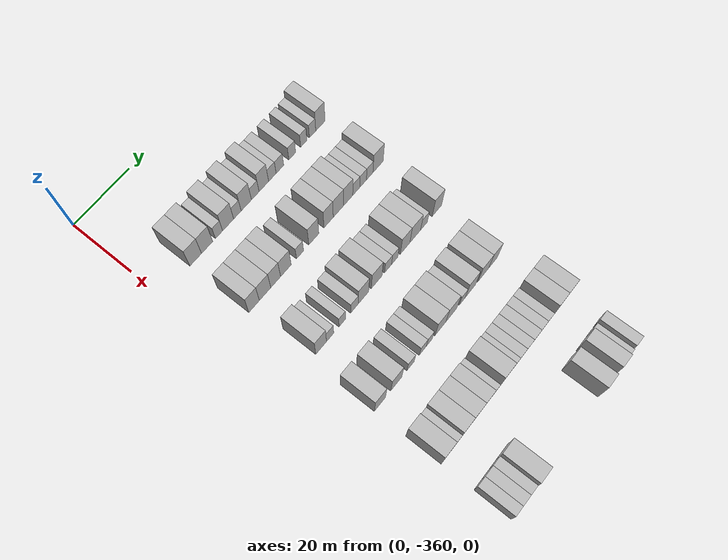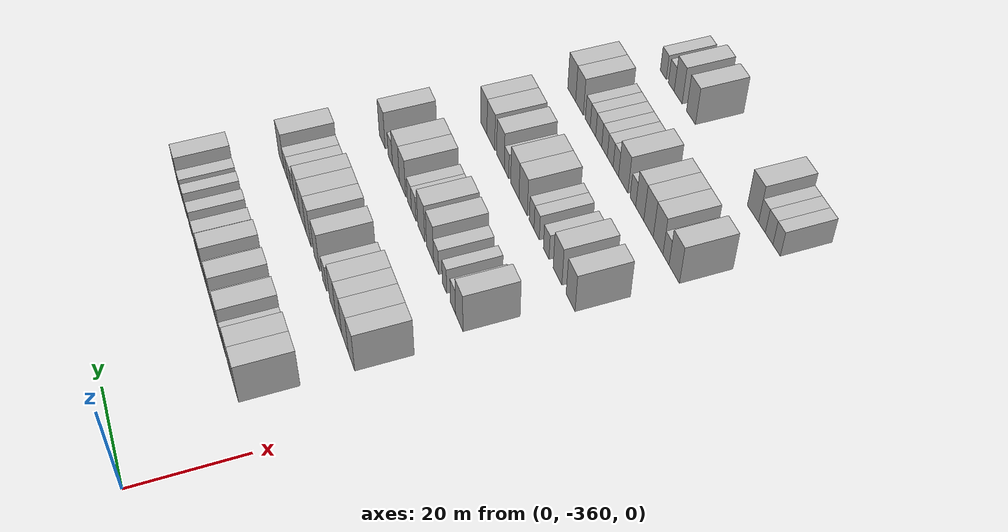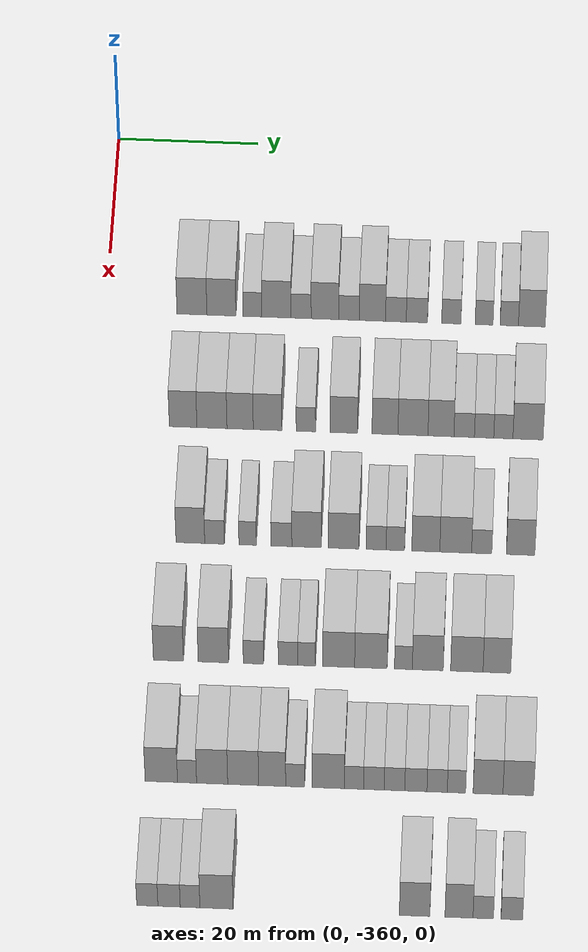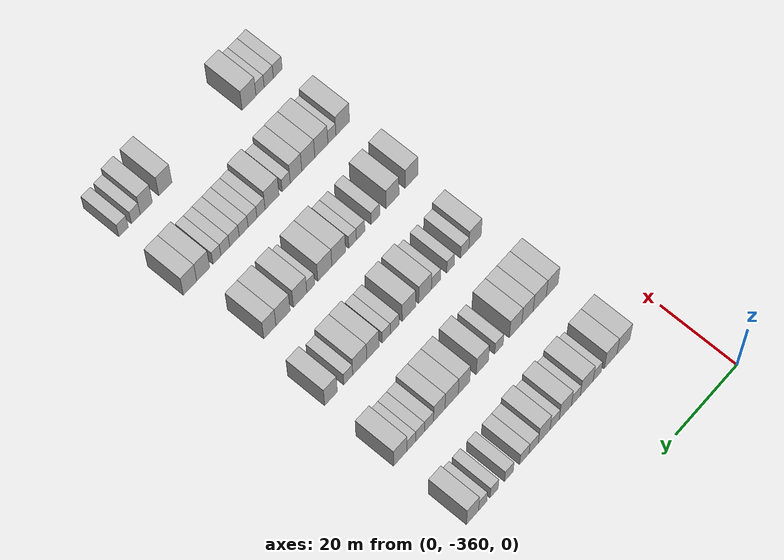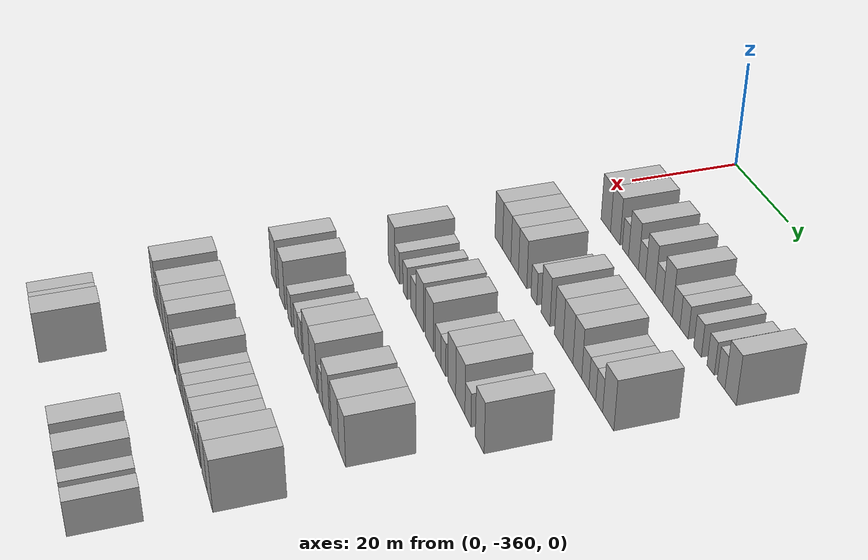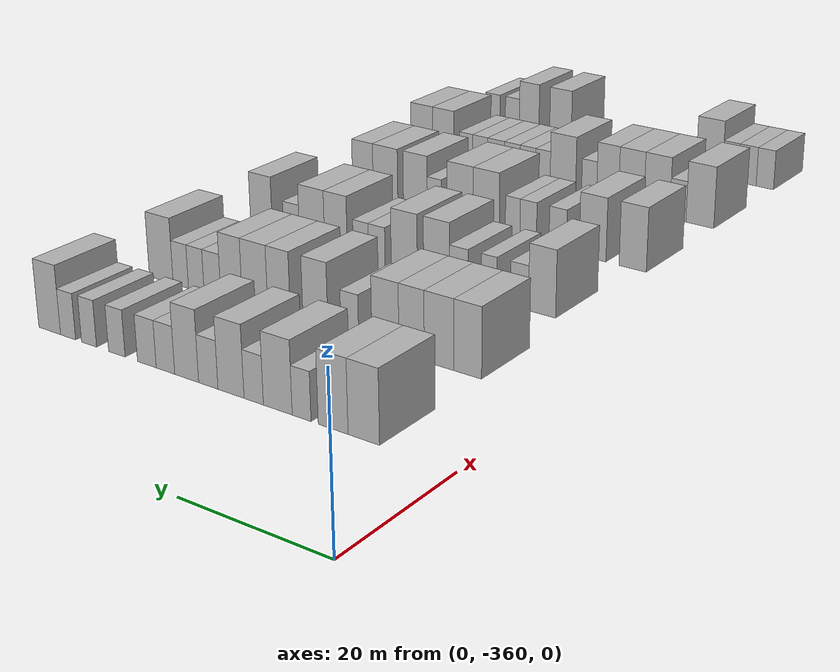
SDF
<sdf version="1.6">
 <world name="default">
  <model name="building_1">
   <static>1</static>
   <pose>25.0000 -347.8892 0 0.000000 0.000000 0.000000</pose>
   <link name="link">
    <pose>0 0 4.50 0 0 0</pose>
    <collision name="collision"><geometry><box><size>10.0000 4.2216 9.0000</size></box></geometry></collision>
    <visual name="visual">
     <cast_shadows>0</cast_shadows>
     <geometry><box><size>10.0000 4.2216 9.0000</size></box></geometry>
     <material>
      <script>
       <uri>model://HANNAS_wall/materials/scripts</uri>
       <uri>model://HANNAS_wall/materials/textures</uri>
       <name>vrc/HANNAS_wall</name>
      </script>
     </material>
    </visual>
   </link>
  </model>
  <model name="building_2">
   <static>1</static>
   <pose>25.0000 -343.7324 0 0.000000 0.000000 0.000000</pose>
   <link name="link">
    <pose>0 0 4.50 0 0 0</pose>
    <collision name="collision"><geometry><box><size>10.0000 4.0920 9.0000</size></box></geometry></collision>
    <visual name="visual">
     <cast_shadows>0</cast_shadows>
     <geometry><box><size>10.0000 4.0920 9.0000</size></box></geometry>
     <material>
      <script>
       <uri>model://HANNAS_wall/materials/scripts</uri>
       <uri>model://HANNAS_wall/materials/textures</uri>
       <name>vrc/HANNAS_wall</name>
      </script>
     </material>
    </visual>
   </link>
  </model>
  <model name="building_3">
   <static>1</static>
   <pose>25.0000 -339.3611 0 0.000000 0.000000 0.000000</pose>
   <link name="link">
    <pose>0 0 3.00 0 0 0</pose>
    <collision name="collision"><geometry><box><size>10.0000 2.6506 6.0000</size></box></geometry></collision>
    <visual name="visual">
     <cast_shadows>0</cast_shadows>
     <geometry><box><size>10.0000 2.6506 6.0000</size></box></geometry>
     <material>
      <script>
       <uri>model://HANNAS_wall/materials/scripts</uri>
       <uri>model://HANNAS_wall/materials/textures</uri>
       <name>vrc/HANNAS_wall</name>
      </script>
     </material>
    </visual>
   </link>
  </model>
  <model name="building_4">
   <static>1</static>
   <pose>25.0000 -335.9743 0 0.000000 0.000000 0.000000</pose>
   <link name="link">
    <pose>0 0 4.50 0 0 0</pose>
    <collision name="collision"><geometry><box><size>10.0000 4.1231 9.0000</size></box></geometry></collision>
    <visual name="visual">
     <cast_shadows>0</cast_shadows>
     <geometry><box><size>10.0000 4.1231 9.0000</size></box></geometry>
     <material>
      <script>
       <uri>model://HANNAS_wall/materials/scripts</uri>
       <uri>model://HANNAS_wall/materials/textures</uri>
       <name>vrc/HANNAS_wall</name>
      </script>
     </material>
    </visual>
   </link>
  </model>
  <model name="building_5">
   <static>1</static>
   <pose>25.0000 -332.4978 0 0.000000 0.000000 0.000000</pose>
   <link name="link">
    <pose>0 0 3.00 0 0 0</pose>
    <collision name="collision"><geometry><box><size>10.0000 2.8299 6.0000</size></box></geometry></collision>
    <visual name="visual">
     <cast_shadows>0</cast_shadows>
     <geometry><box><size>10.0000 2.8299 6.0000</size></box></geometry>
     <material>
      <script>
       <uri>model://HANNAS_wall/materials/scripts</uri>
       <uri>model://HANNAS_wall/materials/textures</uri>
       <name>vrc/HANNAS_wall</name>
      </script>
     </material>
    </visual>
   </link>
  </model>
  <model name="building_6">
   <static>1</static>
   <pose>25.0000 -329.1431 0 0.000000 0.000000 0.000000</pose>
   <link name="link">
    <pose>0 0 4.50 0 0 0</pose>
    <collision name="collision"><geometry><box><size>10.0000 3.8795 9.0000</size></box></geometry></collision>
    <visual name="visual">
     <cast_shadows>0</cast_shadows>
     <geometry><box><size>10.0000 3.8795 9.0000</size></box></geometry>
     <material>
      <script>
       <uri>model://HANNAS_wall/materials/scripts</uri>
       <uri>model://HANNAS_wall/materials/textures</uri>
       <name>vrc/HANNAS_wall</name>
      </script>
     </material>
    </visual>
   </link>
  </model>
  <model name="building_7">
   <static>1</static>
   <pose>25.0000 -325.7389 0 0.000000 0.000000 0.000000</pose>
   <link name="link">
    <pose>0 0 3.00 0 0 0</pose>
    <collision name="collision"><geometry><box><size>10.0000 2.9289 6.0000</size></box></geometry></collision>
    <visual name="visual">
     <cast_shadows>0</cast_shadows>
     <geometry><box><size>10.0000 2.9289 6.0000</size></box></geometry>
     <material>
      <script>
       <uri>model://HANNAS_wall/materials/scripts</uri>
       <uri>model://HANNAS_wall/materials/textures</uri>
       <name>vrc/HANNAS_wall</name>
      </script>
     </material>
    </visual>
   </link>
  </model>
  <model name="building_8">
   <static>1</static>
   <pose>25.0000 -322.4290 0 0.000000 0.000000 0.000000</pose>
   <link name="link">
    <pose>0 0 4.50 0 0 0</pose>
    <collision name="collision"><geometry><box><size>10.0000 3.6909 9.0000</size></box></geometry></collision>
    <visual name="visual">
     <cast_shadows>0</cast_shadows>
     <geometry><box><size>10.0000 3.6909 9.0000</size></box></geometry>
     <material>
      <script>
       <uri>model://HANNAS_wall/materials/scripts</uri>
       <uri>model://HANNAS_wall/materials/textures</uri>
       <name>vrc/HANNAS_wall</name>
      </script>
     </material>
    </visual>
   </link>
  </model>
  <model name="building_9">
   <static>1</static>
   <pose>25.0000 -319.1294 0 0.000000 0.000000 0.000000</pose>
   <link name="link">
    <pose>0 0 3.00 0 0 0</pose>
    <collision name="collision"><geometry><box><size>10.0000 2.9083 6.0000</size></box></geometry></collision>
    <visual name="visual">
     <cast_shadows>0</cast_shadows>
     <geometry><box><size>10.0000 2.9083 6.0000</size></box></geometry>
     <material>
      <script>
       <uri>model://HANNAS_wall/materials/scripts</uri>
       <uri>model://HANNAS_wall/materials/textures</uri>
       <name>vrc/HANNAS_wall</name>
      </script>
     </material>
    </visual>
   </link>
  </model>
  <model name="building_10">
   <static>1</static>
   <pose>25.0000 -316.1820 0 0.000000 0.000000 0.000000</pose>
   <link name="link">
    <pose>0 0 3.00 0 0 0</pose>
    <collision name="collision"><geometry><box><size>10.0000 2.9864 6.0000</size></box></geometry></collision>
    <visual name="visual">
     <cast_shadows>0</cast_shadows>
     <geometry><box><size>10.0000 2.9864 6.0000</size></box></geometry>
     <material>
      <script>
       <uri>model://HANNAS_wall/materials/scripts</uri>
       <uri>model://HANNAS_wall/materials/textures</uri>
       <name>vrc/HANNAS_wall</name>
      </script>
     </material>
    </visual>
   </link>
  </model>
  <model name="building_11">
   <static>1</static>
   <pose>25.0000 -311.3338 0 0.000000 0.000000 0.000000</pose>
   <link name="link">
    <pose>0 0 3.00 0 0 0</pose>
    <collision name="collision"><geometry><box><size>10.0000 2.7099 6.0000</size></box></geometry></collision>
    <visual name="visual">
     <cast_shadows>0</cast_shadows>
     <geometry><box><size>10.0000 2.7099 6.0000</size></box></geometry>
     <material>
      <script>
       <uri>model://HANNAS_wall/materials/scripts</uri>
       <uri>model://HANNAS_wall/materials/textures</uri>
       <name>vrc/HANNAS_wall</name>
      </script>
     </material>
    </visual>
   </link>
  </model>
  <model name="building_12">
   <static>1</static>
   <pose>25.0000 -306.7217 0 0.000000 0.000000 0.000000</pose>
   <link name="link">
    <pose>0 0 3.00 0 0 0</pose>
    <collision name="collision"><geometry><box><size>10.0000 2.5142 6.0000</size></box></geometry></collision>
    <visual name="visual">
     <cast_shadows>0</cast_shadows>
     <geometry><box><size>10.0000 2.5142 6.0000</size></box></geometry>
     <material>
      <script>
       <uri>model://HANNAS_wall/materials/scripts</uri>
       <uri>model://HANNAS_wall/materials/textures</uri>
       <name>vrc/HANNAS_wall</name>
      </script>
     </material>
    </visual>
   </link>
  </model>
  <model name="building_13">
   <static>1</static>
   <pose>25.0000 -303.1790 0 0.000000 0.000000 0.000000</pose>
   <link name="link">
    <pose>0 0 3.00 0 0 0</pose>
    <collision name="collision"><geometry><box><size>10.0000 2.5713 6.0000</size></box></geometry></collision>
    <visual name="visual">
     <cast_shadows>0</cast_shadows>
     <geometry><box><size>10.0000 2.5713 6.0000</size></box></geometry>
     <material>
      <script>
       <uri>model://HANNAS_wall/materials/scripts</uri>
       <uri>model://HANNAS_wall/materials/textures</uri>
       <name>vrc/HANNAS_wall</name>
      </script>
     </material>
    </visual>
   </link>
  </model>
  <model name="building_14">
   <static>1</static>
   <pose>25.0000 -300.0130 0 0.000000 0.000000 0.000000</pose>
   <link name="link">
    <pose>0 0 4.50 0 0 0</pose>
    <collision name="collision"><geometry><box><size>10.0000 3.7607 9.0000</size></box></geometry></collision>
    <visual name="visual">
     <cast_shadows>0</cast_shadows>
     <geometry><box><size>10.0000 3.7607 9.0000</size></box></geometry>
     <material>
      <script>
       <uri>model://HANNAS_wall/materials/scripts</uri>
       <uri>model://HANNAS_wall/materials/textures</uri>
       <name>vrc/HANNAS_wall</name>
      </script>
     </material>
    </visual>
   </link>
  </model>
  <model name="building_188">
   <static>1</static>
   <pose>44.0000 -348.0792 0 0.000000 0.000000 0.000000</pose>
   <link name="link">
    <pose>0 0 4.50 0 0 0</pose>
    <collision name="collision"><geometry><box><size>10.0000 3.8415 9.0000</size></box></geometry></collision>
    <visual name="visual">
     <cast_shadows>0</cast_shadows>
     <geometry><box><size>10.0000 3.8415 9.0000</size></box></geometry>
     <material>
      <script>
       <uri>model://HANNAS_wall/materials/scripts</uri>
       <uri>model://HANNAS_wall/materials/textures</uri>
       <name>vrc/HANNAS_wall</name>
      </script>
     </material>
    </visual>
   </link>
  </model>
  <model name="building_189">
   <static>1</static>
   <pose>44.0000 -344.0613 0 0.000000 0.000000 0.000000</pose>
   <link name="link">
    <pose>0 0 4.50 0 0 0</pose>
    <collision name="collision"><geometry><box><size>10.0000 4.1945 9.0000</size></box></geometry></collision>
    <visual name="visual">
     <cast_shadows>0</cast_shadows>
     <geometry><box><size>10.0000 4.1945 9.0000</size></box></geometry>
     <material>
      <script>
       <uri>model://HANNAS_wall/materials/scripts</uri>
       <uri>model://HANNAS_wall/materials/textures</uri>
       <name>vrc/HANNAS_wall</name>
      </script>
     </material>
    </visual>
   </link>
  </model>
  <model name="building_190">
   <static>1</static>
   <pose>44.0000 -340.1338 0 0.000000 0.000000 0.000000</pose>
   <link name="link">
    <pose>0 0 4.50 0 0 0</pose>
    <collision name="collision"><geometry><box><size>10.0000 3.6605 9.0000</size></box></geometry></collision>
    <visual name="visual">
     <cast_shadows>0</cast_shadows>
     <geometry><box><size>10.0000 3.6605 9.0000</size></box></geometry>
     <material>
      <script>
       <uri>model://HANNAS_wall/materials/scripts</uri>
       <uri>model://HANNAS_wall/materials/textures</uri>
       <name>vrc/HANNAS_wall</name>
      </script>
     </material>
    </visual>
   </link>
  </model>
  <model name="building_191">
   <static>1</static>
   <pose>44.0000 -336.3131 0 0.000000 0.000000 0.000000</pose>
   <link name="link">
    <pose>0 0 4.50 0 0 0</pose>
    <collision name="collision"><geometry><box><size>10.0000 3.9810 9.0000</size></box></geometry></collision>
    <visual name="visual">
     <cast_shadows>0</cast_shadows>
     <geometry><box><size>10.0000 3.9810 9.0000</size></box></geometry>
     <material>
      <script>
       <uri>model://HANNAS_wall/materials/scripts</uri>
       <uri>model://HANNAS_wall/materials/textures</uri>
       <name>vrc/HANNAS_wall</name>
      </script>
     </material>
    </visual>
   </link>
  </model>
  <model name="building_192">
   <static>1</static>
   <pose>44.0000 -330.9774 0 0.000000 0.000000 0.000000</pose>
   <link name="link">
    <pose>0 0 3.00 0 0 0</pose>
    <collision name="collision"><geometry><box><size>10.0000 2.6903 6.0000</size></box></geometry></collision>
    <visual name="visual">
     <cast_shadows>0</cast_shadows>
     <geometry><box><size>10.0000 2.6903 6.0000</size></box></geometry>
     <material>
      <script>
       <uri>model://HANNAS_wall/materials/scripts</uri>
       <uri>model://HANNAS_wall/materials/textures</uri>
       <name>vrc/HANNAS_wall</name>
      </script>
     </material>
    </visual>
   </link>
  </model>
  <model name="building_193">
   <static>1</static>
   <pose>44.0000 -325.6955 0 0.000000 0.000000 0.000000</pose>
   <link name="link">
    <pose>0 0 4.50 0 0 0</pose>
    <collision name="collision"><geometry><box><size>10.0000 3.8735 9.0000</size></box></geometry></collision>
    <visual name="visual">
     <cast_shadows>0</cast_shadows>
     <geometry><box><size>10.0000 3.8735 9.0000</size></box></geometry>
     <material>
      <script>
       <uri>model://HANNAS_wall/materials/scripts</uri>
       <uri>model://HANNAS_wall/materials/textures</uri>
       <name>vrc/HANNAS_wall</name>
      </script>
     </material>
    </visual>
   </link>
  </model>
  <model name="building_194">
   <static>1</static>
   <pose>44.0000 -319.9482 0 0.000000 0.000000 0.000000</pose>
   <link name="link">
    <pose>0 0 4.50 0 0 0</pose>
    <collision name="collision"><geometry><box><size>10.0000 3.6211 9.0000</size></box></geometry></collision>
    <visual name="visual">
     <cast_shadows>0</cast_shadows>
     <geometry><box><size>10.0000 3.6211 9.0000</size></box></geometry>
     <material>
      <script>
       <uri>model://HANNAS_wall/materials/scripts</uri>
       <uri>model://HANNAS_wall/materials/textures</uri>
       <name>vrc/HANNAS_wall</name>
      </script>
     </material>
    </visual>
   </link>
  </model>
  <model name="building_195">
   <static>1</static>
   <pose>44.0000 -316.0528 0 0.000000 0.000000 0.000000</pose>
   <link name="link">
    <pose>0 0 4.50 0 0 0</pose>
    <collision name="collision"><geometry><box><size>10.0000 4.1697 9.0000</size></box></geometry></collision>
    <visual name="visual">
     <cast_shadows>0</cast_shadows>
     <geometry><box><size>10.0000 4.1697 9.0000</size></box></geometry>
     <material>
      <script>
       <uri>model://HANNAS_wall/materials/scripts</uri>
       <uri>model://HANNAS_wall/materials/textures</uri>
       <name>vrc/HANNAS_wall</name>
      </script>
     </material>
    </visual>
   </link>
  </model>
  <model name="building_196">
   <static>1</static>
   <pose>44.0000 -312.1647 0 0.000000 0.000000 0.000000</pose>
   <link name="link">
    <pose>0 0 4.50 0 0 0</pose>
    <collision name="collision"><geometry><box><size>10.0000 3.6064 9.0000</size></box></geometry></collision>
    <visual name="visual">
     <cast_shadows>0</cast_shadows>
     <geometry><box><size>10.0000 3.6064 9.0000</size></box></geometry>
     <material>
      <script>
       <uri>model://HANNAS_wall/materials/scripts</uri>
       <uri>model://HANNAS_wall/materials/textures</uri>
       <name>vrc/HANNAS_wall</name>
      </script>
     </material>
    </visual>
   </link>
  </model>
  <model name="building_197">
   <static>1</static>
   <pose>44.0000 -308.9373 0 0.000000 0.000000 0.000000</pose>
   <link name="link">
    <pose>0 0 3.00 0 0 0</pose>
    <collision name="collision"><geometry><box><size>10.0000 2.8484 6.0000</size></box></geometry></collision>
    <visual name="visual">
     <cast_shadows>0</cast_shadows>
     <geometry><box><size>10.0000 2.8484 6.0000</size></box></geometry>
     <material>
      <script>
       <uri>model://HANNAS_wall/materials/scripts</uri>
       <uri>model://HANNAS_wall/materials/textures</uri>
       <name>vrc/HANNAS_wall</name>
      </script>
     </material>
    </visual>
   </link>
  </model>
  <model name="building_198">
   <static>1</static>
   <pose>44.0000 -306.1685 0 0.000000 0.000000 0.000000</pose>
   <link name="link">
    <pose>0 0 3.00 0 0 0</pose>
    <collision name="collision"><geometry><box><size>10.0000 2.6892 6.0000</size></box></geometry></collision>
    <visual name="visual">
     <cast_shadows>0</cast_shadows>
     <geometry><box><size>10.0000 2.6892 6.0000</size></box></geometry>
     <material>
      <script>
       <uri>model://HANNAS_wall/materials/scripts</uri>
       <uri>model://HANNAS_wall/materials/textures</uri>
       <name>vrc/HANNAS_wall</name>
      </script>
     </material>
    </visual>
   </link>
  </model>
  <model name="building_199">
   <static>1</static>
   <pose>44.0000 -303.4939 0 0.000000 0.000000 0.000000</pose>
   <link name="link">
    <pose>0 0 3.00 0 0 0</pose>
    <collision name="collision"><geometry><box><size>10.0000 2.6599 6.0000</size></box></geometry></collision>
    <visual name="visual">
     <cast_shadows>0</cast_shadows>
     <geometry><box><size>10.0000 2.6599 6.0000</size></box></geometry>
     <material>
      <script>
       <uri>model://HANNAS_wall/materials/scripts</uri>
       <uri>model://HANNAS_wall/materials/textures</uri>
       <name>vrc/HANNAS_wall</name>
      </script>
     </material>
    </visual>
   </link>
  </model>
  <model name="building_200">
   <static>1</static>
   <pose>44.0000 -300.0670 0 0.000000 0.000000 0.000000</pose>
   <link name="link">
    <pose>0 0 4.50 0 0 0</pose>
    <collision name="collision"><geometry><box><size>10.0000 4.1938 9.0000</size></box></geometry></collision>
    <visual name="visual">
     <cast_shadows>0</cast_shadows>
     <geometry><box><size>10.0000 4.1938 9.0000</size></box></geometry>
     <material>
      <script>
       <uri>model://HANNAS_wall/materials/scripts</uri>
       <uri>model://HANNAS_wall/materials/textures</uri>
       <name>vrc/HANNAS_wall</name>
      </script>
     </material>
    </visual>
   </link>
  </model>
  <model name="building_358">
   <static>1</static>
   <pose>63.0000 -346.0237 0 0.000000 0.000000 0.000000</pose>
   <link name="link">
    <pose>0 0 4.50 0 0 0</pose>
    <collision name="collision"><geometry><box><size>10.0000 3.9526 9.0000</size></box></geometry></collision>
    <visual name="visual">
     <cast_shadows>0</cast_shadows>
     <geometry><box><size>10.0000 3.9526 9.0000</size></box></geometry>
     <material>
      <script>
       <uri>model://HANNAS_wall/materials/scripts</uri>
       <uri>model://HANNAS_wall/materials/textures</uri>
       <name>vrc/HANNAS_wall</name>
      </script>
     </material>
    </visual>
   </link>
  </model>
  <model name="building_359">
   <static>1</static>
   <pose>63.0000 -342.6936 0 0.000000 0.000000 0.000000</pose>
   <link name="link">
    <pose>0 0 3.00 0 0 0</pose>
    <collision name="collision"><geometry><box><size>10.0000 2.7076 6.0000</size></box></geometry></collision>
    <visual name="visual">
     <cast_shadows>0</cast_shadows>
     <geometry><box><size>10.0000 2.7076 6.0000</size></box></geometry>
     <material>
      <script>
       <uri>model://HANNAS_wall/materials/scripts</uri>
       <uri>model://HANNAS_wall/materials/textures</uri>
       <name>vrc/HANNAS_wall</name>
      </script>
     </material>
    </visual>
   </link>
  </model>
  <model name="building_360">
   <static>1</static>
   <pose>63.0000 -338.1383 0 0.000000 0.000000 0.000000</pose>
   <link name="link">
    <pose>0 0 3.00 0 0 0</pose>
    <collision name="collision"><geometry><box><size>10.0000 2.4030 6.0000</size></box></geometry></collision>
    <visual name="visual">
     <cast_shadows>0</cast_shadows>
     <geometry><box><size>10.0000 2.4030 6.0000</size></box></geometry>
     <material>
      <script>
       <uri>model://HANNAS_wall/materials/scripts</uri>
       <uri>model://HANNAS_wall/materials/textures</uri>
       <name>vrc/HANNAS_wall</name>
      </script>
     </material>
    </visual>
   </link>
  </model>
  <model name="building_361">
   <static>1</static>
   <pose>63.0000 -333.4951 0 0.000000 0.000000 0.000000</pose>
   <link name="link">
    <pose>0 0 3.00 0 0 0</pose>
    <collision name="collision"><geometry><box><size>10.0000 2.8833 6.0000</size></box></geometry></collision>
    <visual name="visual">
     <cast_shadows>0</cast_shadows>
     <geometry><box><size>10.0000 2.8833 6.0000</size></box></geometry>
     <material>
      <script>
       <uri>model://HANNAS_wall/materials/scripts</uri>
       <uri>model://HANNAS_wall/materials/textures</uri>
       <name>vrc/HANNAS_wall</name>
      </script>
     </material>
    </visual>
   </link>
  </model>
  <model name="building_362">
   <static>1</static>
   <pose>63.0000 -330.0371 0 0.000000 0.000000 0.000000</pose>
   <link name="link">
    <pose>0 0 4.50 0 0 0</pose>
    <collision name="collision"><geometry><box><size>10.0000 4.0327 9.0000</size></box></geometry></collision>
    <visual name="visual">
     <cast_shadows>0</cast_shadows>
     <geometry><box><size>10.0000 4.0327 9.0000</size></box></geometry>
     <material>
      <script>
       <uri>model://HANNAS_wall/materials/scripts</uri>
       <uri>model://HANNAS_wall/materials/textures</uri>
       <name>vrc/HANNAS_wall</name>
      </script>
     </material>
    </visual>
   </link>
  </model>
  <model name="building_363">
   <static>1</static>
   <pose>63.0000 -324.9158 0 0.000000 0.000000 0.000000</pose>
   <link name="link">
    <pose>0 0 4.50 0 0 0</pose>
    <collision name="collision"><geometry><box><size>10.0000 4.2099 9.0000</size></box></geometry></collision>
    <visual name="visual">
     <cast_shadows>0</cast_shadows>
     <geometry><box><size>10.0000 4.2099 9.0000</size></box></geometry>
     <material>
      <script>
       <uri>model://HANNAS_wall/materials/scripts</uri>
       <uri>model://HANNAS_wall/materials/textures</uri>
       <name>vrc/HANNAS_wall</name>
      </script>
     </material>
    </visual>
   </link>
  </model>
  <model name="building_364">
   <static>1</static>
   <pose>63.0000 -320.4370 0 0.000000 0.000000 0.000000</pose>
   <link name="link">
    <pose>0 0 3.00 0 0 0</pose>
    <collision name="collision"><geometry><box><size>10.0000 2.7478 6.0000</size></box></geometry></collision>
    <visual name="visual">
     <cast_shadows>0</cast_shadows>
     <geometry><box><size>10.0000 2.7478 6.0000</size></box></geometry>
     <material>
      <script>
       <uri>model://HANNAS_wall/materials/scripts</uri>
       <uri>model://HANNAS_wall/materials/textures</uri>
       <name>vrc/HANNAS_wall</name>
      </script>
     </material>
    </visual>
   </link>
  </model>
  <model name="building_365">
   <static>1</static>
   <pose>63.0000 -317.8052 0 0.000000 0.000000 0.000000</pose>
   <link name="link">
    <pose>0 0 3.00 0 0 0</pose>
    <collision name="collision"><geometry><box><size>10.0000 2.5157 6.0000</size></box></geometry></collision>
    <visual name="visual">
     <cast_shadows>0</cast_shadows>
     <geometry><box><size>10.0000 2.5157 6.0000</size></box></geometry>
     <material>
      <script>
       <uri>model://HANNAS_wall/materials/scripts</uri>
       <uri>model://HANNAS_wall/materials/textures</uri>
       <name>vrc/HANNAS_wall</name>
      </script>
     </material>
    </visual>
   </link>
  </model>
  <model name="building_366">
   <static>1</static>
   <pose>63.0000 -313.6225 0 0.000000 0.000000 0.000000</pose>
   <link name="link">
    <pose>0 0 4.50 0 0 0</pose>
    <collision name="collision"><geometry><box><size>10.0000 3.8497 9.0000</size></box></geometry></collision>
    <visual name="visual">
     <cast_shadows>0</cast_shadows>
     <geometry><box><size>10.0000 3.8497 9.0000</size></box></geometry>
     <material>
      <script>
       <uri>model://HANNAS_wall/materials/scripts</uri>
       <uri>model://HANNAS_wall/materials/textures</uri>
       <name>vrc/HANNAS_wall</name>
      </script>
     </material>
    </visual>
   </link>
  </model>
  <model name="building_367">
   <static>1</static>
   <pose>63.0000 -309.5153 0 0.000000 0.000000 0.000000</pose>
   <link name="link">
    <pose>0 0 4.50 0 0 0</pose>
    <collision name="collision"><geometry><box><size>10.0000 4.3648 9.0000</size></box></geometry></collision>
    <visual name="visual">
     <cast_shadows>0</cast_shadows>
     <geometry><box><size>10.0000 4.3648 9.0000</size></box></geometry>
     <material>
      <script>
       <uri>model://HANNAS_wall/materials/scripts</uri>
       <uri>model://HANNAS_wall/materials/textures</uri>
       <name>vrc/HANNAS_wall</name>
      </script>
     </material>
    </visual>
   </link>
  </model>
  <model name="building_368">
   <static>1</static>
   <pose>63.0000 -305.9449 0 0.000000 0.000000 0.000000</pose>
   <link name="link">
    <pose>0 0 3.00 0 0 0</pose>
    <collision name="collision"><geometry><box><size>10.0000 2.7760 6.0000</size></box></geometry></collision>
    <visual name="visual">
     <cast_shadows>0</cast_shadows>
     <geometry><box><size>10.0000 2.7760 6.0000</size></box></geometry>
     <material>
      <script>
       <uri>model://HANNAS_wall/materials/scripts</uri>
       <uri>model://HANNAS_wall/materials/textures</uri>
       <name>vrc/HANNAS_wall</name>
      </script>
     </material>
    </visual>
   </link>
  </model>
  <model name="building_369">
   <static>1</static>
   <pose>63.0000 -300.6058 0 0.000000 0.000000 0.000000</pose>
   <link name="link">
    <pose>0 0 4.50 0 0 0</pose>
    <collision name="collision"><geometry><box><size>10.0000 3.9021 9.0000</size></box></geometry></collision>
    <visual name="visual">
     <cast_shadows>0</cast_shadows>
     <geometry><box><size>10.0000 3.9021 9.0000</size></box></geometry>
     <material>
      <script>
       <uri>model://HANNAS_wall/materials/scripts</uri>
       <uri>model://HANNAS_wall/materials/textures</uri>
       <name>vrc/HANNAS_wall</name>
      </script>
     </material>
    </visual>
   </link>
  </model>
  <model name="building_524">
   <static>1</static>
   <pose>82.0000 -347.9562 0 0.000000 0.000000 0.000000</pose>
   <link name="link">
    <pose>0 0 4.50 0 0 0</pose>
    <collision name="collision"><geometry><box><size>10.0000 4.0876 9.0000</size></box></geometry></collision>
    <visual name="visual">
     <cast_shadows>0</cast_shadows>
     <geometry><box><size>10.0000 4.0876 9.0000</size></box></geometry>
     <material>
      <script>
       <uri>model://HANNAS_wall/materials/scripts</uri>
       <uri>model://HANNAS_wall/materials/textures</uri>
       <name>vrc/HANNAS_wall</name>
      </script>
     </material>
    </visual>
   </link>
  </model>
  <model name="building_525">
   <static>1</static>
   <pose>82.0000 -341.8444 0 0.000000 0.000000 0.000000</pose>
   <link name="link">
    <pose>0 0 4.50 0 0 0</pose>
    <collision name="collision"><geometry><box><size>10.0000 4.1361 9.0000</size></box></geometry></collision>
    <visual name="visual">
     <cast_shadows>0</cast_shadows>
     <geometry><box><size>10.0000 4.1361 9.0000</size></box></geometry>
     <material>
      <script>
       <uri>model://HANNAS_wall/materials/scripts</uri>
       <uri>model://HANNAS_wall/materials/textures</uri>
       <name>vrc/HANNAS_wall</name>
      </script>
     </material>
    </visual>
   </link>
  </model>
  <model name="building_526">
   <static>1</static>
   <pose>82.0000 -336.3999 0 0.000000 0.000000 0.000000</pose>
   <link name="link">
    <pose>0 0 3.00 0 0 0</pose>
    <collision name="collision"><geometry><box><size>10.0000 2.7529 6.0000</size></box></geometry></collision>
    <visual name="visual">
     <cast_shadows>0</cast_shadows>
     <geometry><box><size>10.0000 2.7529 6.0000</size></box></geometry>
     <material>
      <script>
       <uri>model://HANNAS_wall/materials/scripts</uri>
       <uri>model://HANNAS_wall/materials/textures</uri>
       <name>vrc/HANNAS_wall</name>
      </script>
     </material>
    </visual>
   </link>
  </model>
  <model name="building_527">
   <static>1</static>
   <pose>82.0000 -331.6946 0 0.000000 0.000000 0.000000</pose>
   <link name="link">
    <pose>0 0 3.00 0 0 0</pose>
    <collision name="collision"><geometry><box><size>10.0000 2.6576 6.0000</size></box></geometry></collision>
    <visual name="visual">
     <cast_shadows>0</cast_shadows>
     <geometry><box><size>10.0000 2.6576 6.0000</size></box></geometry>
     <material>
      <script>
       <uri>model://HANNAS_wall/materials/scripts</uri>
       <uri>model://HANNAS_wall/materials/textures</uri>
       <name>vrc/HANNAS_wall</name>
      </script>
     </material>
    </visual>
   </link>
  </model>
  <model name="building_528">
   <static>1</static>
   <pose>82.0000 -329.1654 0 0.000000 0.000000 0.000000</pose>
   <link name="link">
    <pose>0 0 3.00 0 0 0</pose>
    <collision name="collision"><geometry><box><size>10.0000 2.4007 6.0000</size></box></geometry></collision>
    <visual name="visual">
     <cast_shadows>0</cast_shadows>
     <geometry><box><size>10.0000 2.4007 6.0000</size></box></geometry>
     <material>
      <script>
       <uri>model://HANNAS_wall/materials/scripts</uri>
       <uri>model://HANNAS_wall/materials/textures</uri>
       <name>vrc/HANNAS_wall</name>
      </script>
     </material>
    </visual>
   </link>
  </model>
  <model name="building_529">
   <static>1</static>
   <pose>82.0000 -324.8005 0 0.000000 0.000000 0.000000</pose>
   <link name="link">
    <pose>0 0 4.50 0 0 0</pose>
    <collision name="collision"><geometry><box><size>10.0000 4.3291 9.0000</size></box></geometry></collision>
    <visual name="visual">
     <cast_shadows>0</cast_shadows>
     <geometry><box><size>10.0000 4.3291 9.0000</size></box></geometry>
     <material>
      <script>
       <uri>model://HANNAS_wall/materials/scripts</uri>
       <uri>model://HANNAS_wall/materials/textures</uri>
       <name>vrc/HANNAS_wall</name>
      </script>
     </material>
    </visual>
   </link>
  </model>
  <model name="building_530">
   <static>1</static>
   <pose>82.0000 -320.4324 0 0.000000 0.000000 0.000000</pose>
   <link name="link">
    <pose>0 0 4.50 0 0 0</pose>
    <collision name="collision"><geometry><box><size>10.0000 4.4071 9.0000</size></box></geometry></collision>
    <visual name="visual">
     <cast_shadows>0</cast_shadows>
     <geometry><box><size>10.0000 4.4071 9.0000</size></box></geometry>
     <material>
      <script>
       <uri>model://HANNAS_wall/materials/scripts</uri>
       <uri>model://HANNAS_wall/materials/textures</uri>
       <name>vrc/HANNAS_wall</name>
      </script>
     </material>
    </visual>
   </link>
  </model>
  <model name="building_531">
   <static>1</static>
   <pose>82.0000 -316.0143 0 0.000000 0.000000 0.000000</pose>
   <link name="link">
    <pose>0 0 3.00 0 0 0</pose>
    <collision name="collision"><geometry><box><size>10.0000 2.4291 6.0000</size></box></geometry></collision>
    <visual name="visual">
     <cast_shadows>0</cast_shadows>
     <geometry><box><size>10.0000 2.4291 6.0000</size></box></geometry>
     <material>
      <script>
       <uri>model://HANNAS_wall/materials/scripts</uri>
       <uri>model://HANNAS_wall/materials/textures</uri>
       <name>vrc/HANNAS_wall</name>
      </script>
     </material>
    </visual>
   </link>
  </model>
  <model name="building_532">
   <static>1</static>
   <pose>82.0000 -312.7058 0 0.000000 0.000000 0.000000</pose>
   <link name="link">
    <pose>0 0 4.50 0 0 0</pose>
    <collision name="collision"><geometry><box><size>10.0000 4.1878 9.0000</size></box></geometry></collision>
    <visual name="visual">
     <cast_shadows>0</cast_shadows>
     <geometry><box><size>10.0000 4.1878 9.0000</size></box></geometry>
     <material>
      <script>
       <uri>model://HANNAS_wall/materials/scripts</uri>
       <uri>model://HANNAS_wall/materials/textures</uri>
       <name>vrc/HANNAS_wall</name>
      </script>
     </material>
    </visual>
   </link>
  </model>
  <model name="building_533">
   <static>1</static>
   <pose>82.0000 -307.4114 0 0.000000 0.000000 0.000000</pose>
   <link name="link">
    <pose>0 0 4.50 0 0 0</pose>
    <collision name="collision"><geometry><box><size>10.0000 4.4010 9.0000</size></box></geometry></collision>
    <visual name="visual">
     <cast_shadows>0</cast_shadows>
     <geometry><box><size>10.0000 4.4010 9.0000</size></box></geometry>
     <material>
      <script>
       <uri>model://HANNAS_wall/materials/scripts</uri>
       <uri>model://HANNAS_wall/materials/textures</uri>
       <name>vrc/HANNAS_wall</name>
      </script>
     </material>
    </visual>
   </link>
  </model>
  <model name="building_534">
   <static>1</static>
   <pose>82.0000 -303.3360 0 0.000000 0.000000 0.000000</pose>
   <link name="link">
    <pose>0 0 4.50 0 0 0</pose>
    <collision name="collision"><geometry><box><size>10.0000 3.7499 9.0000</size></box></geometry></collision>
    <visual name="visual">
     <cast_shadows>0</cast_shadows>
     <geometry><box><size>10.0000 3.7499 9.0000</size></box></geometry>
     <material>
      <script>
       <uri>model://HANNAS_wall/materials/scripts</uri>
       <uri>model://HANNAS_wall/materials/textures</uri>
       <name>vrc/HANNAS_wall</name>
      </script>
     </material>
    </visual>
   </link>
  </model>
  <model name="building_692">
   <static>1</static>
   <pose>101.0000 -347.8277 0 0.000000 0.000000 0.000000</pose>
   <link name="link">
    <pose>0 0 4.50 0 0 0</pose>
    <collision name="collision"><geometry><box><size>10.0000 4.3445 9.0000</size></box></geometry></collision>
    <visual name="visual">
     <cast_shadows>0</cast_shadows>
     <geometry><box><size>10.0000 4.3445 9.0000</size></box></geometry>
     <material>
      <script>
       <uri>model://HANNAS_wall/materials/scripts</uri>
       <uri>model://HANNAS_wall/materials/textures</uri>
       <name>vrc/HANNAS_wall</name>
      </script>
     </material>
    </visual>
   </link>
  </model>
  <model name="building_693">
   <static>1</static>
   <pose>101.0000 -344.3752 0 0.000000 0.000000 0.000000</pose>
   <link name="link">
    <pose>0 0 3.00 0 0 0</pose>
    <collision name="collision"><geometry><box><size>10.0000 2.5605 6.0000</size></box></geometry></collision>
    <visual name="visual">
     <cast_shadows>0</cast_shadows>
     <geometry><box><size>10.0000 2.5605 6.0000</size></box></geometry>
     <material>
      <script>
       <uri>model://HANNAS_wall/materials/scripts</uri>
       <uri>model://HANNAS_wall/materials/textures</uri>
       <name>vrc/HANNAS_wall</name>
      </script>
     </material>
    </visual>
   </link>
  </model>
  <model name="building_694">
   <static>1</static>
   <pose>101.0000 -341.0056 0 0.000000 0.000000 0.000000</pose>
   <link name="link">
    <pose>0 0 4.50 0 0 0</pose>
    <collision name="collision"><geometry><box><size>10.0000 4.1788 9.0000</size></box></geometry></collision>
    <visual name="visual">
     <cast_shadows>0</cast_shadows>
     <geometry><box><size>10.0000 4.1788 9.0000</size></box></geometry>
     <material>
      <script>
       <uri>model://HANNAS_wall/materials/scripts</uri>
       <uri>model://HANNAS_wall/materials/textures</uri>
       <name>vrc/HANNAS_wall</name>
      </script>
     </material>
    </visual>
   </link>
  </model>
  <model name="building_695">
   <static>1</static>
   <pose>101.0000 -336.8390 0 0.000000 0.000000 0.000000</pose>
   <link name="link">
    <pose>0 0 4.50 0 0 0</pose>
    <collision name="collision"><geometry><box><size>10.0000 4.1544 9.0000</size></box></geometry></collision>
    <visual name="visual">
     <cast_shadows>0</cast_shadows>
     <geometry><box><size>10.0000 4.1544 9.0000</size></box></geometry>
     <material>
      <script>
       <uri>model://HANNAS_wall/materials/scripts</uri>
       <uri>model://HANNAS_wall/materials/textures</uri>
       <name>vrc/HANNAS_wall</name>
      </script>
     </material>
    </visual>
   </link>
  </model>
  <model name="building_696">
   <static>1</static>
   <pose>101.0000 -332.9453 0 0.000000 0.000000 0.000000</pose>
   <link name="link">
    <pose>0 0 4.50 0 0 0</pose>
    <collision name="collision"><geometry><box><size>10.0000 3.6330 9.0000</size></box></geometry></collision>
    <visual name="visual">
     <cast_shadows>0</cast_shadows>
     <geometry><box><size>10.0000 3.6330 9.0000</size></box></geometry>
     <material>
      <script>
       <uri>model://HANNAS_wall/materials/scripts</uri>
       <uri>model://HANNAS_wall/materials/textures</uri>
       <name>vrc/HANNAS_wall</name>
      </script>
     </material>
    </visual>
   </link>
  </model>
  <model name="building_697">
   <static>1</static>
   <pose>101.0000 -329.8615 0 0.000000 0.000000 0.000000</pose>
   <link name="link">
    <pose>0 0 3.00 0 0 0</pose>
    <collision name="collision"><geometry><box><size>10.0000 2.5345 6.0000</size></box></geometry></collision>
    <visual name="visual">
     <cast_shadows>0</cast_shadows>
     <geometry><box><size>10.0000 2.5345 6.0000</size></box></geometry>
     <material>
      <script>
       <uri>model://HANNAS_wall/materials/scripts</uri>
       <uri>model://HANNAS_wall/materials/textures</uri>
       <name>vrc/HANNAS_wall</name>
      </script>
     </material>
    </visual>
   </link>
  </model>
  <model name="building_698">
   <static>1</static>
   <pose>101.0000 -325.4056 0 0.000000 0.000000 0.000000</pose>
   <link name="link">
    <pose>0 0 4.50 0 0 0</pose>
    <collision name="collision"><geometry><box><size>10.0000 4.3775 9.0000</size></box></geometry></collision>
    <visual name="visual">
     <cast_shadows>0</cast_shadows>
     <geometry><box><size>10.0000 4.3775 9.0000</size></box></geometry>
     <material>
      <script>
       <uri>model://HANNAS_wall/materials/scripts</uri>
       <uri>model://HANNAS_wall/materials/textures</uri>
       <name>vrc/HANNAS_wall</name>
      </script>
     </material>
    </visual>
   </link>
  </model>
  <model name="building_699">
   <static>1</static>
   <pose>101.0000 -321.9438 0 0.000000 0.000000 0.000000</pose>
   <link name="link">
    <pose>0 0 3.00 0 0 0</pose>
    <collision name="collision"><geometry><box><size>10.0000 2.5460 6.0000</size></box></geometry></collision>
    <visual name="visual">
     <cast_shadows>0</cast_shadows>
     <geometry><box><size>10.0000 2.5460 6.0000</size></box></geometry>
     <material>
      <script>
       <uri>model://HANNAS_wall/materials/scripts</uri>
       <uri>model://HANNAS_wall/materials/textures</uri>
       <name>vrc/HANNAS_wall</name>
      </script>
     </material>
    </visual>
   </link>
  </model>
  <model name="building_700">
   <static>1</static>
   <pose>101.0000 -319.2803 0 0.000000 0.000000 0.000000</pose>
   <link name="link">
    <pose>0 0 3.00 0 0 0</pose>
    <collision name="collision"><geometry><box><size>10.0000 2.7811 6.0000</size></box></geometry></collision>
    <visual name="visual">
     <cast_shadows>0</cast_shadows>
     <geometry><box><size>10.0000 2.7811 6.0000</size></box></geometry>
     <material>
      <script>
       <uri>model://HANNAS_wall/materials/scripts</uri>
       <uri>model://HANNAS_wall/materials/textures</uri>
       <name>vrc/HANNAS_wall</name>
      </script>
     </material>
    </visual>
   </link>
  </model>
  <model name="building_701">
   <static>1</static>
   <pose>101.0000 -316.5111 0 0.000000 0.000000 0.000000</pose>
   <link name="link">
    <pose>0 0 3.00 0 0 0</pose>
    <collision name="collision"><geometry><box><size>10.0000 2.7574 6.0000</size></box></geometry></collision>
    <visual name="visual">
     <cast_shadows>0</cast_shadows>
     <geometry><box><size>10.0000 2.7574 6.0000</size></box></geometry>
     <material>
      <script>
       <uri>model://HANNAS_wall/materials/scripts</uri>
       <uri>model://HANNAS_wall/materials/textures</uri>
       <name>vrc/HANNAS_wall</name>
      </script>
     </material>
    </visual>
   </link>
  </model>
  <model name="building_702">
   <static>1</static>
   <pose>101.0000 -313.6477 0 0.000000 0.000000 0.000000</pose>
   <link name="link">
    <pose>0 0 3.00 0 0 0</pose>
    <collision name="collision"><geometry><box><size>10.0000 2.9693 6.0000</size></box></geometry></collision>
    <visual name="visual">
     <cast_shadows>0</cast_shadows>
     <geometry><box><size>10.0000 2.9693 6.0000</size></box></geometry>
     <material>
      <script>
       <uri>model://HANNAS_wall/materials/scripts</uri>
       <uri>model://HANNAS_wall/materials/textures</uri>
       <name>vrc/HANNAS_wall</name>
      </script>
     </material>
    </visual>
   </link>
  </model>
  <model name="building_703">
   <static>1</static>
   <pose>101.0000 -310.8055 0 0.000000 0.000000 0.000000</pose>
   <link name="link">
    <pose>0 0 3.00 0 0 0</pose>
    <collision name="collision"><geometry><box><size>10.0000 2.7151 6.0000</size></box></geometry></collision>
    <visual name="visual">
     <cast_shadows>0</cast_shadows>
     <geometry><box><size>10.0000 2.7151 6.0000</size></box></geometry>
     <material>
      <script>
       <uri>model://HANNAS_wall/materials/scripts</uri>
       <uri>model://HANNAS_wall/materials/textures</uri>
       <name>vrc/HANNAS_wall</name>
      </script>
     </material>
    </visual>
   </link>
  </model>
  <model name="building_704">
   <static>1</static>
   <pose>101.0000 -308.2169 0 0.000000 0.000000 0.000000</pose>
   <link name="link">
    <pose>0 0 3.00 0 0 0</pose>
    <collision name="collision"><geometry><box><size>10.0000 2.4622 6.0000</size></box></geometry></collision>
    <visual name="visual">
     <cast_shadows>0</cast_shadows>
     <geometry><box><size>10.0000 2.4622 6.0000</size></box></geometry>
     <material>
      <script>
       <uri>model://HANNAS_wall/materials/scripts</uri>
       <uri>model://HANNAS_wall/materials/textures</uri>
       <name>vrc/HANNAS_wall</name>
      </script>
     </material>
    </visual>
   </link>
  </model>
  <model name="building_705">
   <static>1</static>
   <pose>101.0000 -303.9882 0 0.000000 0.000000 0.000000</pose>
   <link name="link">
    <pose>0 0 4.50 0 0 0</pose>
    <collision name="collision"><geometry><box><size>10.0000 3.9952 9.0000</size></box></geometry></collision>
    <visual name="visual">
     <cast_shadows>0</cast_shadows>
     <geometry><box><size>10.0000 3.9952 9.0000</size></box></geometry>
     <material>
      <script>
       <uri>model://HANNAS_wall/materials/scripts</uri>
       <uri>model://HANNAS_wall/materials/textures</uri>
       <name>vrc/HANNAS_wall</name>
      </script>
     </material>
    </visual>
   </link>
  </model>
  <model name="building_706">
   <static>1</static>
   <pose>101.0000 -299.9372 0 0.000000 0.000000 0.000000</pose>
   <link name="link">
    <pose>0 0 4.50 0 0 0</pose>
    <collision name="collision"><geometry><box><size>10.0000 4.1068 9.0000</size></box></geometry></collision>
    <visual name="visual">
     <cast_shadows>0</cast_shadows>
     <geometry><box><size>10.0000 4.1068 9.0000</size></box></geometry>
     <material>
      <script>
       <uri>model://HANNAS_wall/materials/scripts</uri>
       <uri>model://HANNAS_wall/materials/textures</uri>
       <name>vrc/HANNAS_wall</name>
      </script>
     </material>
    </visual>
   </link>
  </model>
  <model name="building_860">
   <static>1</static>
   <pose>120.0000 -348.5959 0 0.000000 0.000000 0.000000</pose>
   <link name="link">
    <pose>0 0 3.00 0 0 0</pose>
    <collision name="collision"><geometry><box><size>10.0000 2.8082 6.0000</size></box></geometry></collision>
    <visual name="visual">
     <cast_shadows>0</cast_shadows>
     <geometry><box><size>10.0000 2.8082 6.0000</size></box></geometry>
     <material>
      <script>
       <uri>model://HANNAS_wall/materials/scripts</uri>
       <uri>model://HANNAS_wall/materials/textures</uri>
       <name>vrc/HANNAS_wall</name>
      </script>
     </material>
    </visual>
   </link>
  </model>
  <model name="building_861">
   <static>1</static>
   <pose>120.0000 -345.7111 0 0.000000 0.000000 0.000000</pose>
   <link name="link">
    <pose>0 0 3.00 0 0 0</pose>
    <collision name="collision"><geometry><box><size>10.0000 2.9614 6.0000</size></box></geometry></collision>
    <visual name="visual">
     <cast_shadows>0</cast_shadows>
     <geometry><box><size>10.0000 2.9614 6.0000</size></box></geometry>
     <material>
      <script>
       <uri>model://HANNAS_wall/materials/scripts</uri>
       <uri>model://HANNAS_wall/materials/textures</uri>
       <name>vrc/HANNAS_wall</name>
      </script>
     </material>
    </visual>
   </link>
  </model>
  <model name="building_862">
   <static>1</static>
   <pose>120.0000 -342.9248 0 0.000000 0.000000 0.000000</pose>
   <link name="link">
    <pose>0 0 3.00 0 0 0</pose>
    <collision name="collision"><geometry><box><size>10.0000 2.6113 6.0000</size></box></geometry></collision>
    <visual name="visual">
     <cast_shadows>0</cast_shadows>
     <geometry><box><size>10.0000 2.6113 6.0000</size></box></geometry>
     <material>
      <script>
       <uri>model://HANNAS_wall/materials/scripts</uri>
       <uri>model://HANNAS_wall/materials/textures</uri>
       <name>vrc/HANNAS_wall</name>
      </script>
     </material>
    </visual>
   </link>
  </model>
  <model name="building_863">
   <static>1</static>
   <pose>120.0000 -339.4148 0 0.000000 0.000000 0.000000</pose>
   <link name="link">
    <pose>0 0 4.50 0 0 0</pose>
    <collision name="collision"><geometry><box><size>10.0000 4.4086 9.0000</size></box></geometry></collision>
    <visual name="visual">
     <cast_shadows>0</cast_shadows>
     <geometry><box><size>10.0000 4.4086 9.0000</size></box></geometry>
     <material>
      <script>
       <uri>model://HANNAS_wall/materials/scripts</uri>
       <uri>model://HANNAS_wall/materials/textures</uri>
       <name>vrc/HANNAS_wall</name>
      </script>
     </material>
    </visual>
   </link>
  </model>
  <model name="building_864">
   <static>1</static>
   <pose>120.0000 -313.1542 0 0.000000 0.000000 0.000000</pose>
   <link name="link">
    <pose>0 0 4.50 0 0 0</pose>
    <collision name="collision"><geometry><box><size>10.0000 4.0376 9.0000</size></box></geometry></collision>
    <visual name="visual">
     <cast_shadows>0</cast_shadows>
     <geometry><box><size>10.0000 4.0376 9.0000</size></box></geometry>
     <material>
      <script>
       <uri>model://HANNAS_wall/materials/scripts</uri>
       <uri>model://HANNAS_wall/materials/textures</uri>
       <name>vrc/HANNAS_wall</name>
      </script>
     </material>
    </visual>
   </link>
  </model>
  <model name="building_865">
   <static>1</static>
   <pose>120.0000 -307.2802 0 0.000000 0.000000 0.000000</pose>
   <link name="link">
    <pose>0 0 4.50 0 0 0</pose>
    <collision name="collision"><geometry><box><size>10.0000 3.7103 9.0000</size></box></geometry></collision>
    <visual name="visual">
     <cast_shadows>0</cast_shadows>
     <geometry><box><size>10.0000 3.7103 9.0000</size></box></geometry>
     <material>
      <script>
       <uri>model://HANNAS_wall/materials/scripts</uri>
       <uri>model://HANNAS_wall/materials/textures</uri>
       <name>vrc/HANNAS_wall</name>
      </script>
     </material>
    </visual>
   </link>
  </model>
  <model name="building_866">
   <static>1</static>
   <pose>120.0000 -304.0717 0 0.000000 0.000000 0.000000</pose>
   <link name="link">
    <pose>0 0 3.00 0 0 0</pose>
    <collision name="collision"><geometry><box><size>10.0000 2.7068 6.0000</size></box></geometry></collision>
    <visual name="visual">
     <cast_shadows>0</cast_shadows>
     <geometry><box><size>10.0000 2.7068 6.0000</size></box></geometry>
     <material>
      <script>
       <uri>model://HANNAS_wall/materials/scripts</uri>
       <uri>model://HANNAS_wall/materials/textures</uri>
       <name>vrc/HANNAS_wall</name>
      </script>
     </material>
    </visual>
   </link>
  </model>
  <model name="building_867">
   <static>1</static>
   <pose>120.0000 -300.2895 0 0.000000 0.000000 0.000000</pose>
   <link name="link">
    <pose>0 0 3.00 0 0 0</pose>
    <collision name="collision"><geometry><box><size>10.0000 2.8576 6.0000</size></box></geometry></collision>
    <visual name="visual">
     <cast_shadows>0</cast_shadows>
     <geometry><box><size>10.0000 2.8576 6.0000</size></box></geometry>
     <material>
      <script>
       <uri>model://HANNAS_wall/materials/scripts</uri>
       <uri>model://HANNAS_wall/materials/textures</uri>
       <name>vrc/HANNAS_wall</name>
      </script>
     </material>
    </visual>
   </link>
  </model>
 </world>
</sdf>
